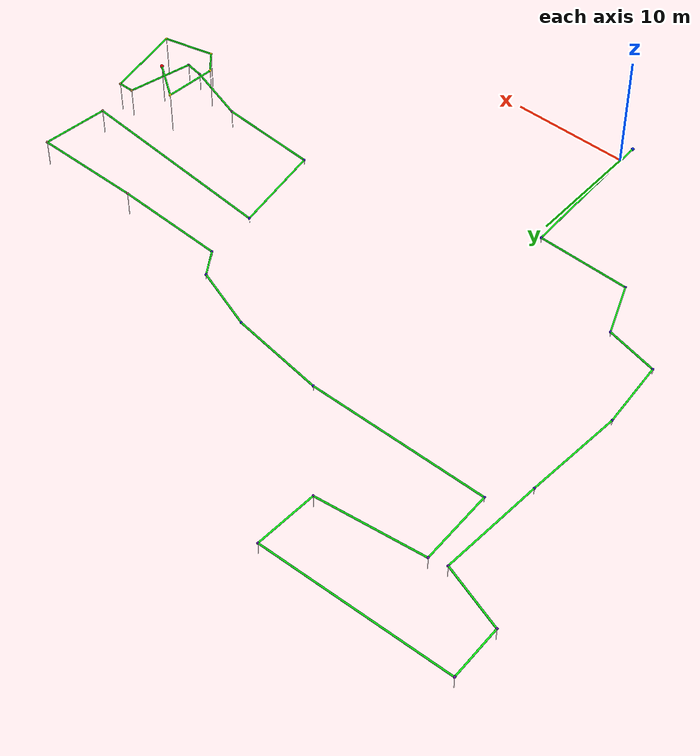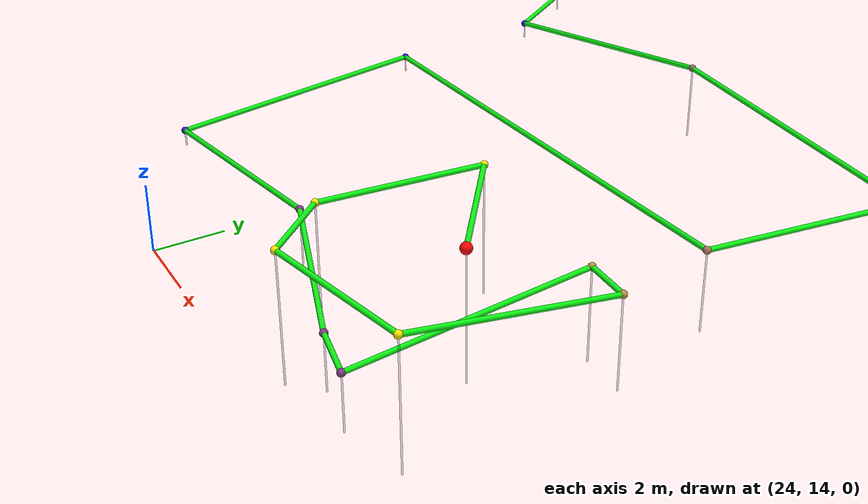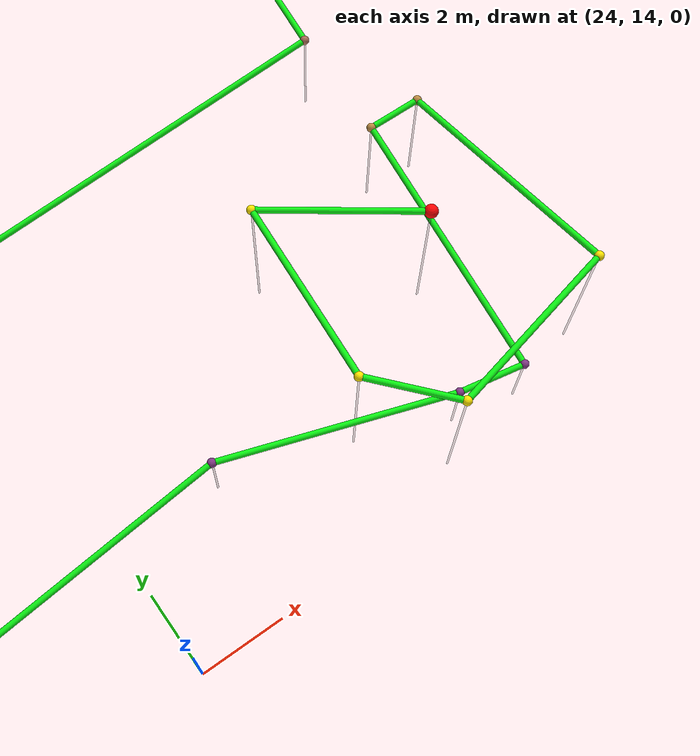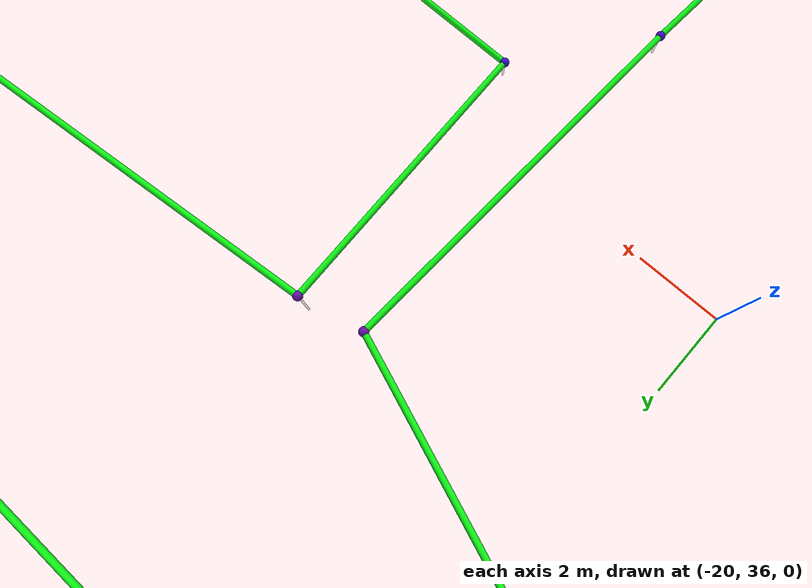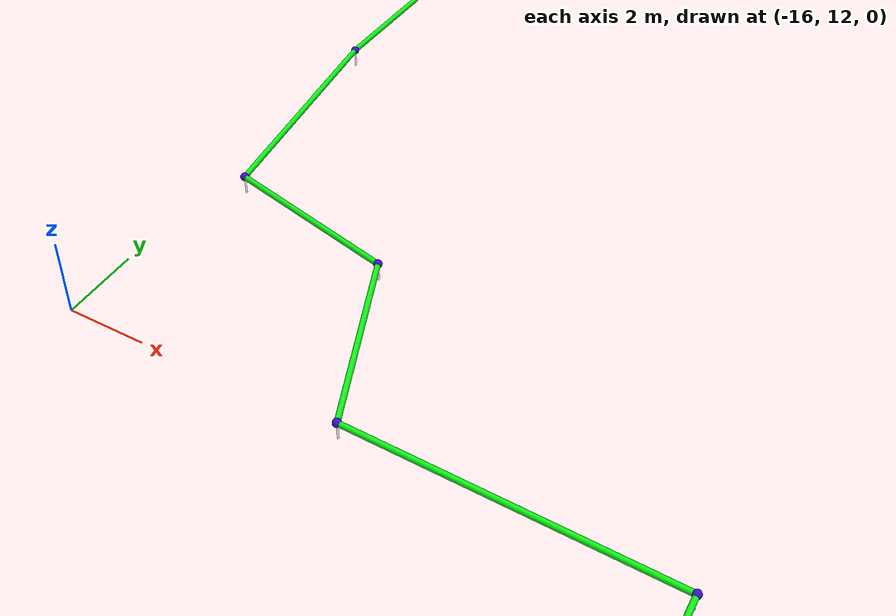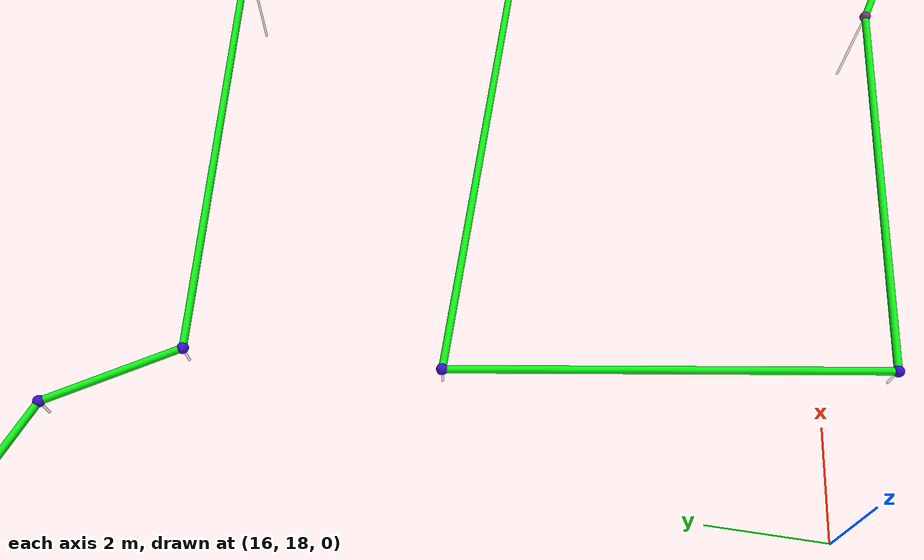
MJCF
<mujoco model="track_overlay">
  <worldbody>
    <body name="track_overlay">
      <geom name="track_segment_000" type="capsule" fromto="0.0000 -1.7250 0.0000 -0.7125 11.6550 0.4750" size="0.0700" rgba="0.05 0.95 0.08 1" contype="0" conaffinity="0" group="2"/>
      <geom name="track_segment_001" type="capsule" fromto="-0.7125 11.6550 0.4750 -8.7300 11.8425 0.4750" size="0.0700" rgba="0.05 0.95 0.08 1" contype="0" conaffinity="0" group="2"/>
      <geom name="track_segment_002" type="capsule" fromto="-8.7300 11.8425 0.4750 -10.5375 16.3275 0.4750" size="0.0700" rgba="0.05 0.95 0.08 1" contype="0" conaffinity="0" group="2"/>
      <geom name="track_segment_003" type="capsule" fromto="-10.5375 16.3275 0.4750 -15.0225 17.3700 0.4750" size="0.0700" rgba="0.05 0.95 0.08 1" contype="0" conaffinity="0" group="2"/>
      <geom name="track_segment_004" type="capsule" fromto="-15.0225 17.3700 0.4750 -15.6000 23.2800 0.4750" size="0.0700" rgba="0.05 0.95 0.08 1" contype="0" conaffinity="0" group="2"/>
      <geom name="track_segment_005" type="capsule" fromto="-15.6000 23.2800 0.4750 -15.1200 31.8600 0.6000" size="0.0700" rgba="0.05 0.95 0.08 1" contype="0" conaffinity="0" group="2"/>
      <geom name="track_segment_006" type="capsule" fromto="-15.1200 31.8600 0.6000 -14.9325 41.2050 1.1650" size="0.0700" rgba="0.05 0.95 0.08 1" contype="0" conaffinity="0" group="2"/>
      <geom name="track_segment_007" type="capsule" fromto="-14.9325 41.2050 1.1650 -20.4600 43.1100 1.1650" size="0.0700" rgba="0.05 0.95 0.08 1" contype="0" conaffinity="0" group="2"/>
      <geom name="track_segment_008" type="capsule" fromto="-20.4600 43.1100 1.1650 -20.6550 47.7825 1.1650" size="0.0700" rgba="0.05 0.95 0.08 1" contype="0" conaffinity="0" group="2"/>
      <geom name="track_segment_009" type="capsule" fromto="-20.6550 47.7825 1.1650 -4.0500 47.9700 1.1650" size="0.0700" rgba="0.05 0.95 0.08 1" contype="0" conaffinity="0" group="2"/>
      <geom name="track_segment_010" type="capsule" fromto="-4.0500 47.9700 1.1650 -4.2450 42.5400 1.1650" size="0.0700" rgba="0.05 0.95 0.08 1" contype="0" conaffinity="0" group="2"/>
      <geom name="track_segment_011" type="capsule" fromto="-4.2450 42.5400 1.1650 -13.5000 41.5500 1.1650" size="0.0700" rgba="0.05 0.95 0.08 1" contype="0" conaffinity="0" group="2"/>
      <geom name="track_segment_012" type="capsule" fromto="-13.5000 41.5500 1.1650 -12.9225 34.6275 0.4750" size="0.0700" rgba="0.05 0.95 0.08 1" contype="0" conaffinity="0" group="2"/>
      <geom name="track_segment_013" type="capsule" fromto="-12.9225 34.6275 0.4750 2.7225 34.5300 0.4750" size="0.0700" rgba="0.05 0.95 0.08 1" contype="0" conaffinity="0" group="2"/>
      <geom name="track_segment_014" type="capsule" fromto="2.7225 34.5300 0.4750 11.1225 33.0075 0.1000" size="0.0700" rgba="0.05 0.95 0.08 1" contype="0" conaffinity="0" group="2"/>
      <geom name="track_segment_015" type="capsule" fromto="11.1225 33.0075 0.1000 16.2750 31.2900 0.4750" size="0.0700" rgba="0.05 0.95 0.08 1" contype="0" conaffinity="0" group="2"/>
      <geom name="track_segment_016" type="capsule" fromto="16.2750 31.2900 0.4750 17.6100 29.1900 0.4750" size="0.0700" rgba="0.05 0.95 0.08 1" contype="0" conaffinity="0" group="2"/>
      <geom name="track_segment_017" type="capsule" fromto="17.6100 29.1900 0.4750 25.7175 29.9550 2.2000" size="0.0700" rgba="0.05 0.95 0.08 1" contype="0" conaffinity="0" group="2"/>
      <geom name="track_segment_018" type="capsule" fromto="25.7175 29.9550 2.2000 34.5975 29.9550 2.3600" size="0.0700" rgba="0.05 0.95 0.08 1" contype="0" conaffinity="0" group="2"/>
      <geom name="track_segment_019" type="capsule" fromto="34.5975 29.9550 2.3600 33.9225 24.4275 2.3600" size="0.0700" rgba="0.05 0.95 0.08 1" contype="0" conaffinity="0" group="2"/>
      <geom name="track_segment_020" type="capsule" fromto="33.9225 24.4275 2.3600 17.8950 24.6150 0.4750" size="0.0700" rgba="0.05 0.95 0.08 1" contype="0" conaffinity="0" group="2"/>
      <geom name="track_segment_021" type="capsule" fromto="17.8950 24.6150 0.4750 19.0425 16.8000 0.4750" size="0.0700" rgba="0.05 0.95 0.08 1" contype="0" conaffinity="0" group="2"/>
      <geom name="track_segment_022" type="capsule" fromto="19.0425 16.8000 0.4750 26.4825 17.1825 1.6700" size="0.0700" rgba="0.05 0.95 0.08 1" contype="0" conaffinity="0" group="2"/>
      <geom name="track_segment_023" type="capsule" fromto="26.4825 17.1825 1.6700 31.6350 15.4650 1.6700" size="0.0700" rgba="0.05 0.95 0.08 1" contype="0" conaffinity="0" group="2"/>
      <geom name="track_segment_024" type="capsule" fromto="31.6350 15.4650 1.6700 33.1650 15.1800 1.6700" size="0.0700" rgba="0.05 0.95 0.08 1" contype="0" conaffinity="0" group="2"/>
      <geom name="track_segment_025" type="capsule" fromto="33.1650 15.1800 1.6700 33.6000 21.3750 2.7000" size="0.0700" rgba="0.05 0.95 0.08 1" contype="0" conaffinity="0" group="2"/>
      <geom name="track_segment_026" type="capsule" fromto="33.6000 21.3750 2.7000 34.8825 21.3750 2.7000" size="0.0700" rgba="0.05 0.95 0.08 1" contype="0" conaffinity="0" group="2"/>
      <geom name="track_segment_027" type="capsule" fromto="34.8825 21.3750 2.7000 35.0700 15.6600 3.7500" size="0.0700" rgba="0.05 0.95 0.08 1" contype="0" conaffinity="0" group="2"/>
      <geom name="track_segment_028" type="capsule" fromto="35.0700 15.6600 3.7500 30.9350 14.7150 3.7500" size="0.0700" rgba="0.05 0.95 0.08 1" contype="0" conaffinity="0" group="2"/>
      <geom name="track_segment_029" type="capsule" fromto="30.9350 14.7150 3.7500 29.5350 16.3275 3.7500" size="0.0700" rgba="0.05 0.95 0.08 1" contype="0" conaffinity="0" group="2"/>
      <geom name="track_segment_030" type="capsule" fromto="29.5350 16.3275 3.7500 29.9175 20.6175 3.7500" size="0.0700" rgba="0.05 0.95 0.08 1" contype="0" conaffinity="0" group="2"/>
      <geom name="track_segment_031" type="capsule" fromto="29.9175 20.6175 3.7500 32.9250 18.4500 3.7500" size="0.0700" rgba="0.05 0.95 0.08 1" contype="0" conaffinity="0" group="2"/>
      <geom name="track_waypoint_000_start" type="sphere" pos="0.0000 -1.7250 0.0000" size="0.1418" rgba="0.050 0.180 1.000 1.000" contype="0" conaffinity="0" group="2"/>
      <geom name="track_height_post_001" type="capsule" fromto="-0.7125 11.6550 0.0000 -0.7125 11.6550 0.4750" size="0.0225" rgba="0.45 0.45 0.45 0.28" contype="0" conaffinity="0" group="2"/>
      <geom name="track_waypoint_001_waypoint" type="sphere" pos="-0.7125 11.6550 0.4750" size="0.1050" rgba="0.231 0.050 0.830 1.000" contype="0" conaffinity="0" group="2"/>
      <geom name="track_height_post_002" type="capsule" fromto="-8.7300 11.8425 0.0000 -8.7300 11.8425 0.4750" size="0.0225" rgba="0.45 0.45 0.45 0.28" contype="0" conaffinity="0" group="2"/>
      <geom name="track_waypoint_002_waypoint" type="sphere" pos="-8.7300 11.8425 0.4750" size="0.1050" rgba="0.231 0.050 0.830 1.000" contype="0" conaffinity="0" group="2"/>
      <geom name="track_height_post_003" type="capsule" fromto="-10.5375 16.3275 0.0000 -10.5375 16.3275 0.4750" size="0.0225" rgba="0.45 0.45 0.45 0.28" contype="0" conaffinity="0" group="2"/>
      <geom name="track_waypoint_003_waypoint" type="sphere" pos="-10.5375 16.3275 0.4750" size="0.1050" rgba="0.231 0.050 0.830 1.000" contype="0" conaffinity="0" group="2"/>
      <geom name="track_height_post_004" type="capsule" fromto="-15.0225 17.3700 0.0000 -15.0225 17.3700 0.4750" size="0.0225" rgba="0.45 0.45 0.45 0.28" contype="0" conaffinity="0" group="2"/>
      <geom name="track_waypoint_004_waypoint" type="sphere" pos="-15.0225 17.3700 0.4750" size="0.1050" rgba="0.231 0.050 0.830 1.000" contype="0" conaffinity="0" group="2"/>
      <geom name="track_height_post_005" type="capsule" fromto="-15.6000 23.2800 0.0000 -15.6000 23.2800 0.4750" size="0.0225" rgba="0.45 0.45 0.45 0.28" contype="0" conaffinity="0" group="2"/>
      <geom name="track_waypoint_005_waypoint" type="sphere" pos="-15.6000 23.2800 0.4750" size="0.1050" rgba="0.231 0.050 0.830 1.000" contype="0" conaffinity="0" group="2"/>
      <geom name="track_height_post_006" type="capsule" fromto="-15.1200 31.8600 0.0000 -15.1200 31.8600 0.6000" size="0.0225" rgba="0.45 0.45 0.45 0.28" contype="0" conaffinity="0" group="2"/>
      <geom name="track_waypoint_006_waypoint" type="sphere" pos="-15.1200 31.8600 0.6000" size="0.1050" rgba="0.261 0.050 0.798 1.000" contype="0" conaffinity="0" group="2"/>
      <geom name="track_height_post_007" type="capsule" fromto="-14.9325 41.2050 0.0000 -14.9325 41.2050 1.1650" size="0.0225" rgba="0.45 0.45 0.45 0.28" contype="0" conaffinity="0" group="2"/>
      <geom name="track_waypoint_007_waypoint" type="sphere" pos="-14.9325 41.2050 1.1650" size="0.1050" rgba="0.393 0.063 0.655 1.000" contype="0" conaffinity="0" group="2"/>
      <geom name="track_height_post_008" type="capsule" fromto="-20.4600 43.1100 0.0000 -20.4600 43.1100 1.1650" size="0.0225" rgba="0.45 0.45 0.45 0.28" contype="0" conaffinity="0" group="2"/>
      <geom name="track_waypoint_008_waypoint" type="sphere" pos="-20.4600 43.1100 1.1650" size="0.1050" rgba="0.393 0.063 0.655 1.000" contype="0" conaffinity="0" group="2"/>
      <geom name="track_height_post_009" type="capsule" fromto="-20.6550 47.7825 0.0000 -20.6550 47.7825 1.1650" size="0.0225" rgba="0.45 0.45 0.45 0.28" contype="0" conaffinity="0" group="2"/>
      <geom name="track_waypoint_009_waypoint" type="sphere" pos="-20.6550 47.7825 1.1650" size="0.1050" rgba="0.393 0.063 0.655 1.000" contype="0" conaffinity="0" group="2"/>
      <geom name="track_height_post_010" type="capsule" fromto="-4.0500 47.9700 0.0000 -4.0500 47.9700 1.1650" size="0.0225" rgba="0.45 0.45 0.45 0.28" contype="0" conaffinity="0" group="2"/>
      <geom name="track_waypoint_010_waypoint" type="sphere" pos="-4.0500 47.9700 1.1650" size="0.1050" rgba="0.393 0.063 0.655 1.000" contype="0" conaffinity="0" group="2"/>
      <geom name="track_height_post_011" type="capsule" fromto="-4.2450 42.5400 0.0000 -4.2450 42.5400 1.1650" size="0.0225" rgba="0.45 0.45 0.45 0.28" contype="0" conaffinity="0" group="2"/>
      <geom name="track_waypoint_011_waypoint" type="sphere" pos="-4.2450 42.5400 1.1650" size="0.1050" rgba="0.393 0.063 0.655 1.000" contype="0" conaffinity="0" group="2"/>
      <geom name="track_height_post_012" type="capsule" fromto="-13.5000 41.5500 0.0000 -13.5000 41.5500 1.1650" size="0.0225" rgba="0.45 0.45 0.45 0.28" contype="0" conaffinity="0" group="2"/>
      <geom name="track_waypoint_012_waypoint" type="sphere" pos="-13.5000 41.5500 1.1650" size="0.1050" rgba="0.393 0.063 0.655 1.000" contype="0" conaffinity="0" group="2"/>
      <geom name="track_height_post_013" type="capsule" fromto="-12.9225 34.6275 0.0000 -12.9225 34.6275 0.4750" size="0.0225" rgba="0.45 0.45 0.45 0.28" contype="0" conaffinity="0" group="2"/>
      <geom name="track_waypoint_013_waypoint" type="sphere" pos="-12.9225 34.6275 0.4750" size="0.1050" rgba="0.231 0.050 0.830 1.000" contype="0" conaffinity="0" group="2"/>
      <geom name="track_height_post_014" type="capsule" fromto="2.7225 34.5300 0.0000 2.7225 34.5300 0.4750" size="0.0225" rgba="0.45 0.45 0.45 0.28" contype="0" conaffinity="0" group="2"/>
      <geom name="track_waypoint_014_waypoint" type="sphere" pos="2.7225 34.5300 0.4750" size="0.1050" rgba="0.231 0.050 0.830 1.000" contype="0" conaffinity="0" group="2"/>
      <geom name="track_height_post_015" type="capsule" fromto="11.1225 33.0075 0.0000 11.1225 33.0075 0.1000" size="0.0225" rgba="0.45 0.45 0.45 0.28" contype="0" conaffinity="0" group="2"/>
      <geom name="track_waypoint_015_waypoint" type="sphere" pos="11.1225 33.0075 0.1000" size="0.1050" rgba="0.143 0.050 0.925 1.000" contype="0" conaffinity="0" group="2"/>
      <geom name="track_height_post_016" type="capsule" fromto="16.2750 31.2900 0.0000 16.2750 31.2900 0.4750" size="0.0225" rgba="0.45 0.45 0.45 0.28" contype="0" conaffinity="0" group="2"/>
      <geom name="track_waypoint_016_waypoint" type="sphere" pos="16.2750 31.2900 0.4750" size="0.1050" rgba="0.231 0.050 0.830 1.000" contype="0" conaffinity="0" group="2"/>
      <geom name="track_height_post_017" type="capsule" fromto="17.6100 29.1900 0.0000 17.6100 29.1900 0.4750" size="0.0225" rgba="0.45 0.45 0.45 0.28" contype="0" conaffinity="0" group="2"/>
      <geom name="track_waypoint_017_waypoint" type="sphere" pos="17.6100 29.1900 0.4750" size="0.1050" rgba="0.231 0.050 0.830 1.000" contype="0" conaffinity="0" group="2"/>
      <geom name="track_height_post_018" type="capsule" fromto="25.7175 29.9550 0.0000 25.7175 29.9550 2.2000" size="0.0225" rgba="0.45 0.45 0.45 0.28" contype="0" conaffinity="0" group="2"/>
      <geom name="track_waypoint_018_waypoint" type="sphere" pos="25.7175 29.9550 2.2000" size="0.1050" rgba="0.636 0.398 0.393 1.000" contype="0" conaffinity="0" group="2"/>
      <geom name="track_height_post_019" type="capsule" fromto="34.5975 29.9550 0.0000 34.5975 29.9550 2.3600" size="0.0225" rgba="0.45 0.45 0.45 0.28" contype="0" conaffinity="0" group="2"/>
      <geom name="track_waypoint_019_waypoint" type="sphere" pos="34.5975 29.9550 2.3600" size="0.1050" rgba="0.674 0.450 0.352 1.000" contype="0" conaffinity="0" group="2"/>
      <geom name="track_height_post_020" type="capsule" fromto="33.9225 24.4275 0.0000 33.9225 24.4275 2.3600" size="0.0225" rgba="0.45 0.45 0.45 0.28" contype="0" conaffinity="0" group="2"/>
      <geom name="track_waypoint_020_waypoint" type="sphere" pos="33.9225 24.4275 2.3600" size="0.1050" rgba="0.674 0.450 0.352 1.000" contype="0" conaffinity="0" group="2"/>
      <geom name="track_height_post_021" type="capsule" fromto="17.8950 24.6150 0.0000 17.8950 24.6150 0.4750" size="0.0225" rgba="0.45 0.45 0.45 0.28" contype="0" conaffinity="0" group="2"/>
      <geom name="track_waypoint_021_waypoint" type="sphere" pos="17.8950 24.6150 0.4750" size="0.1050" rgba="0.231 0.050 0.830 1.000" contype="0" conaffinity="0" group="2"/>
      <geom name="track_height_post_022" type="capsule" fromto="19.0425 16.8000 0.0000 19.0425 16.8000 0.4750" size="0.0225" rgba="0.45 0.45 0.45 0.28" contype="0" conaffinity="0" group="2"/>
      <geom name="track_waypoint_022_waypoint" type="sphere" pos="19.0425 16.8000 0.4750" size="0.1050" rgba="0.231 0.050 0.830 1.000" contype="0" conaffinity="0" group="2"/>
      <geom name="track_height_post_023" type="capsule" fromto="26.4825 17.1825 0.0000 26.4825 17.1825 1.6700" size="0.0225" rgba="0.45 0.45 0.45 0.28" contype="0" conaffinity="0" group="2"/>
      <geom name="track_waypoint_023_waypoint" type="sphere" pos="26.4825 17.1825 1.6700" size="0.1050" rgba="0.512 0.226 0.527 1.000" contype="0" conaffinity="0" group="2"/>
      <geom name="track_height_post_024" type="capsule" fromto="31.6350 15.4650 0.0000 31.6350 15.4650 1.6700" size="0.0225" rgba="0.45 0.45 0.45 0.28" contype="0" conaffinity="0" group="2"/>
      <geom name="track_waypoint_024_waypoint" type="sphere" pos="31.6350 15.4650 1.6700" size="0.1050" rgba="0.512 0.226 0.527 1.000" contype="0" conaffinity="0" group="2"/>
      <geom name="track_height_post_025" type="capsule" fromto="33.1650 15.1800 0.0000 33.1650 15.1800 1.6700" size="0.0225" rgba="0.45 0.45 0.45 0.28" contype="0" conaffinity="0" group="2"/>
      <geom name="track_waypoint_025_waypoint" type="sphere" pos="33.1650 15.1800 1.6700" size="0.1050" rgba="0.512 0.226 0.527 1.000" contype="0" conaffinity="0" group="2"/>
      <geom name="track_height_post_026" type="capsule" fromto="33.6000 21.3750 0.0000 33.6000 21.3750 2.7000" size="0.0225" rgba="0.45 0.45 0.45 0.28" contype="0" conaffinity="0" group="2"/>
      <geom name="track_waypoint_026_waypoint" type="sphere" pos="33.6000 21.3750 2.7000" size="0.1050" rgba="0.754 0.560 0.266 1.000" contype="0" conaffinity="0" group="2"/>
      <geom name="track_height_post_027" type="capsule" fromto="34.8825 21.3750 0.0000 34.8825 21.3750 2.7000" size="0.0225" rgba="0.45 0.45 0.45 0.28" contype="0" conaffinity="0" group="2"/>
      <geom name="track_waypoint_027_waypoint" type="sphere" pos="34.8825 21.3750 2.7000" size="0.1050" rgba="0.754 0.560 0.266 1.000" contype="0" conaffinity="0" group="2"/>
      <geom name="track_height_post_028" type="capsule" fromto="35.0700 15.6600 0.0000 35.0700 15.6600 3.7500" size="0.0225" rgba="0.45 0.45 0.45 0.28" contype="0" conaffinity="0" group="2"/>
      <geom name="track_waypoint_028_waypoint" type="sphere" pos="35.0700 15.6600 3.7500" size="0.1050" rgba="1.000 0.900 0.000 1.000" contype="0" conaffinity="0" group="2"/>
      <geom name="track_height_post_029" type="capsule" fromto="30.9350 14.7150 0.0000 30.9350 14.7150 3.7500" size="0.0225" rgba="0.45 0.45 0.45 0.28" contype="0" conaffinity="0" group="2"/>
      <geom name="track_waypoint_029_waypoint" type="sphere" pos="30.9350 14.7150 3.7500" size="0.1050" rgba="1.000 0.900 0.000 1.000" contype="0" conaffinity="0" group="2"/>
      <geom name="track_height_post_030" type="capsule" fromto="29.5350 16.3275 0.0000 29.5350 16.3275 3.7500" size="0.0225" rgba="0.45 0.45 0.45 0.28" contype="0" conaffinity="0" group="2"/>
      <geom name="track_waypoint_030_waypoint" type="sphere" pos="29.5350 16.3275 3.7500" size="0.1050" rgba="1.000 0.900 0.000 1.000" contype="0" conaffinity="0" group="2"/>
      <geom name="track_height_post_031" type="capsule" fromto="29.9175 20.6175 0.0000 29.9175 20.6175 3.7500" size="0.0225" rgba="0.45 0.45 0.45 0.28" contype="0" conaffinity="0" group="2"/>
      <geom name="track_waypoint_031_waypoint" type="sphere" pos="29.9175 20.6175 3.7500" size="0.1050" rgba="1.000 0.900 0.000 1.000" contype="0" conaffinity="0" group="2"/>
      <geom name="track_height_post_032" type="capsule" fromto="32.9250 18.4500 0.0000 32.9250 18.4500 3.7500" size="0.0225" rgba="0.45 0.45 0.45 0.28" contype="0" conaffinity="0" group="2"/>
      <geom name="track_waypoint_032_end" type="sphere" pos="32.9250 18.4500 3.7500" size="0.1522" rgba="1.000 0.020 0.020 1.000" contype="0" conaffinity="0" group="2"/>
    </body>
  </worldbody>
</mujoco>
